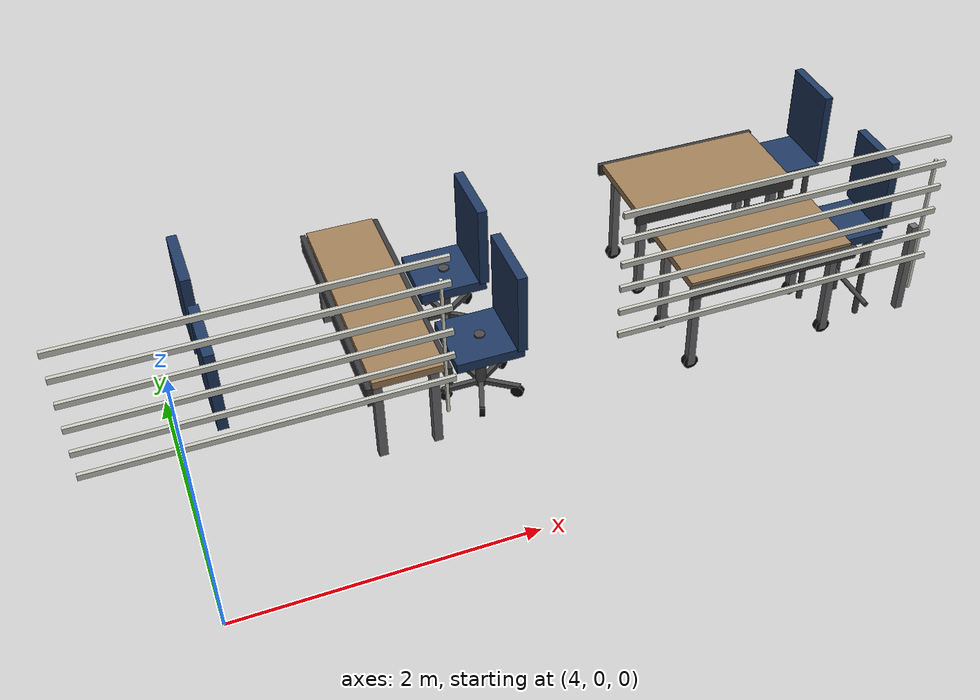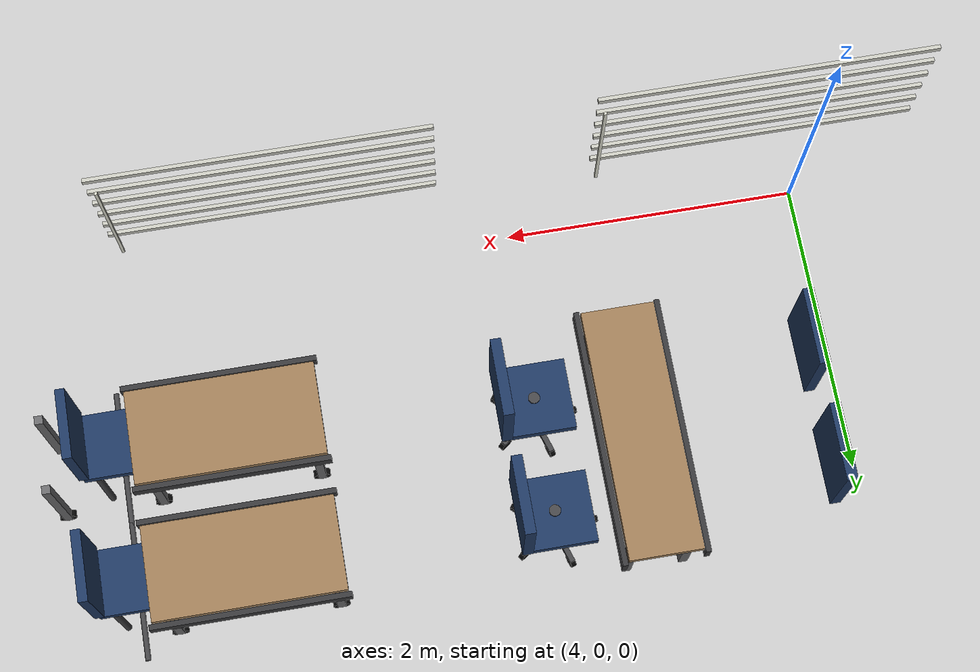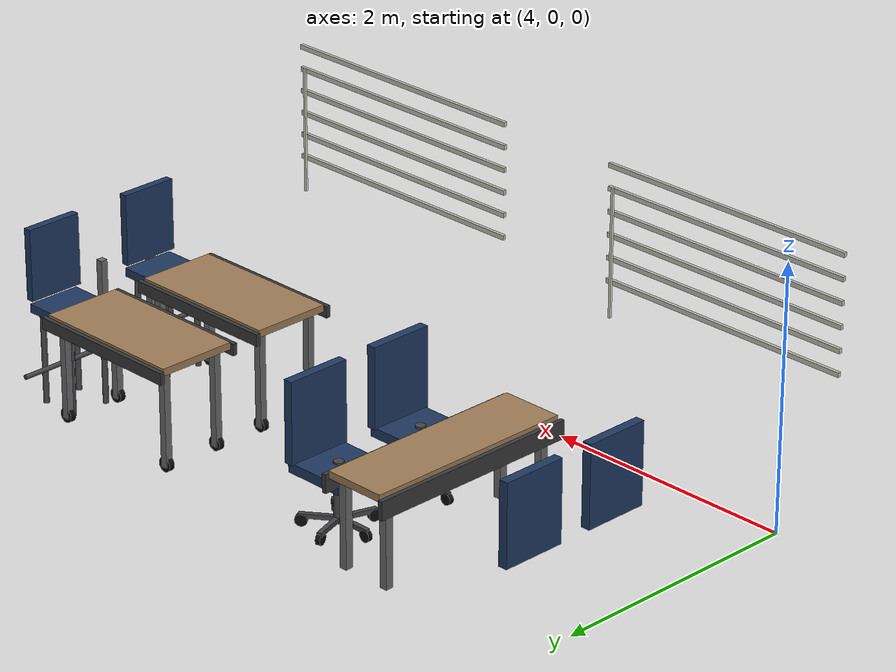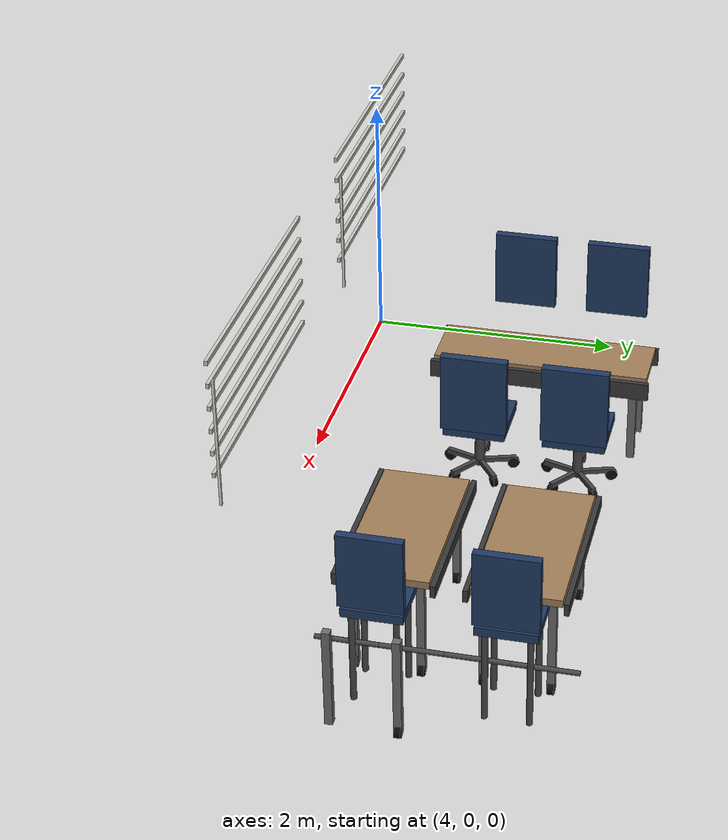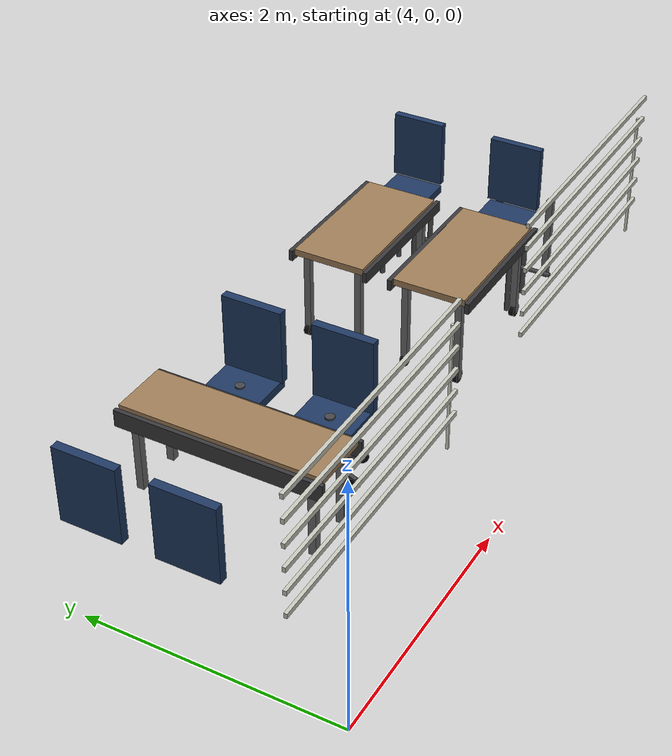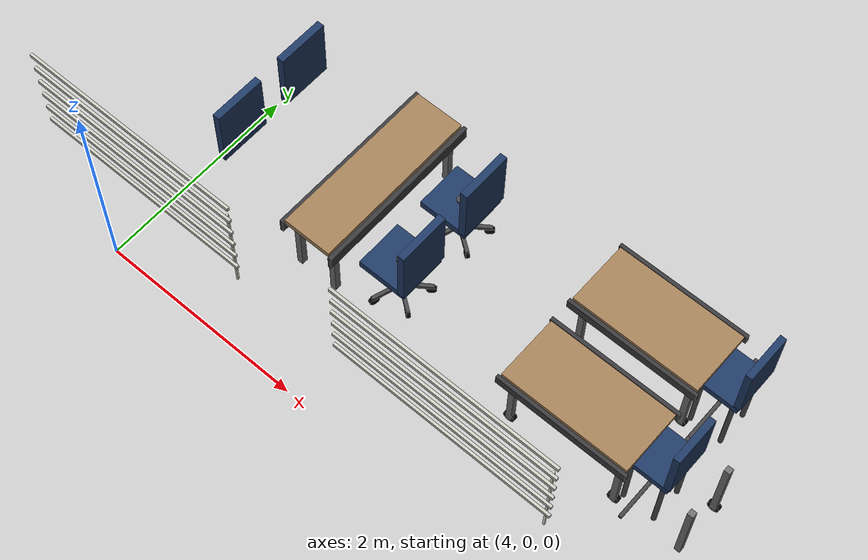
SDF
<sdf version="1.10">
 <model name="room_427_furnishings">
  <static>true</static>
  <link name="blind_2_1">
   <pose>4.49 0.085 2.25 0 0 0</pose>
   <visual name="visual">
    <geometry><box><size>2.06 0.024 0.035</size></box></geometry>
    <material>
     <ambient>0.72 0.72 0.68 1</ambient>
     <diffuse>0.78 0.78 0.74 1</diffuse>
     <specular>0.12 0.12 0.12 1</specular>
    </material>
   </visual>
  </link>
  <link name="blind_2_2">
   <pose>4.49 0.085 2.08 0 0 0</pose>
   <visual name="visual">
    <geometry><box><size>2.06 0.024 0.035</size></box></geometry>
    <material>
     <ambient>0.72 0.72 0.68 1</ambient>
     <diffuse>0.78 0.78 0.74 1</diffuse>
     <specular>0.12 0.12 0.12 1</specular>
    </material>
   </visual>
  </link>
  <link name="blind_2_3">
   <pose>4.49 0.085 1.91 0 0 0</pose>
   <visual name="visual">
    <geometry><box><size>2.06 0.024 0.035</size></box></geometry>
    <material>
     <ambient>0.72 0.72 0.68 1</ambient>
     <diffuse>0.78 0.78 0.74 1</diffuse>
     <specular>0.12 0.12 0.12 1</specular>
    </material>
   </visual>
  </link>
  <link name="blind_2_4">
   <pose>4.49 0.085 1.74 0 0 0</pose>
   <visual name="visual">
    <geometry><box><size>2.06 0.024 0.035</size></box></geometry>
    <material>
     <ambient>0.72 0.72 0.68 1</ambient>
     <diffuse>0.78 0.78 0.74 1</diffuse>
     <specular>0.12 0.12 0.12 1</specular>
    </material>
   </visual>
  </link>
  <link name="blind_2_5">
   <pose>4.49 0.085 1.57 0 0 0</pose>
   <visual name="visual">
    <geometry><box><size>2.06 0.024 0.035</size></box></geometry>
    <material>
     <ambient>0.72 0.72 0.68 1</ambient>
     <diffuse>0.78 0.78 0.74 1</diffuse>
     <specular>0.12 0.12 0.12 1</specular>
    </material>
   </visual>
  </link>
  <link name="blind_2_6">
   <pose>4.49 0.085 1.4 0 0 0</pose>
   <visual name="visual">
    <geometry><box><size>2.06 0.024 0.035</size></box></geometry>
    <material>
     <ambient>0.72 0.72 0.68 1</ambient>
     <diffuse>0.78 0.78 0.74 1</diffuse>
     <specular>0.12 0.12 0.12 1</specular>
    </material>
   </visual>
  </link>
  <link name="blind_2_pull">
   <pose>5.47 0.105 1.62 0 0 0</pose>
   <visual name="visual">
    <geometry><box><size>0.018 0.018 0.96</size></box></geometry>
    <material>
     <ambient>0.78 0.78 0.72 1</ambient>
     <diffuse>0.86 0.86 0.80 1</diffuse>
     <specular>0.45 0.45 0.40 1</specular>
    </material>
   </visual>
  </link>
  <link name="blind_3_1">
   <pose>7.53 0.085 2.25 0 0 0</pose>
   <visual name="visual">
    <geometry><box><size>2.06 0.024 0.035</size></box></geometry>
    <material>
     <ambient>0.72 0.72 0.68 1</ambient>
     <diffuse>0.78 0.78 0.74 1</diffuse>
     <specular>0.12 0.12 0.12 1</specular>
    </material>
   </visual>
  </link>
  <link name="blind_3_2">
   <pose>7.53 0.085 2.08 0 0 0</pose>
   <visual name="visual">
    <geometry><box><size>2.06 0.024 0.035</size></box></geometry>
    <material>
     <ambient>0.72 0.72 0.68 1</ambient>
     <diffuse>0.78 0.78 0.74 1</diffuse>
     <specular>0.12 0.12 0.12 1</specular>
    </material>
   </visual>
  </link>
  <link name="blind_3_3">
   <pose>7.53 0.085 1.91 0 0 0</pose>
   <visual name="visual">
    <geometry><box><size>2.06 0.024 0.035</size></box></geometry>
    <material>
     <ambient>0.72 0.72 0.68 1</ambient>
     <diffuse>0.78 0.78 0.74 1</diffuse>
     <specular>0.12 0.12 0.12 1</specular>
    </material>
   </visual>
  </link>
  <link name="blind_3_4">
   <pose>7.53 0.085 1.74 0 0 0</pose>
   <visual name="visual">
    <geometry><box><size>2.06 0.024 0.035</size></box></geometry>
    <material>
     <ambient>0.72 0.72 0.68 1</ambient>
     <diffuse>0.78 0.78 0.74 1</diffuse>
     <specular>0.12 0.12 0.12 1</specular>
    </material>
   </visual>
  </link>
  <link name="blind_3_5">
   <pose>7.53 0.085 1.57 0 0 0</pose>
   <visual name="visual">
    <geometry><box><size>2.06 0.024 0.035</size></box></geometry>
    <material>
     <ambient>0.72 0.72 0.68 1</ambient>
     <diffuse>0.78 0.78 0.74 1</diffuse>
     <specular>0.12 0.12 0.12 1</specular>
    </material>
   </visual>
  </link>
  <link name="blind_3_6">
   <pose>7.53 0.085 1.4 0 0 0</pose>
   <visual name="visual">
    <geometry><box><size>2.06 0.024 0.035</size></box></geometry>
    <material>
     <ambient>0.72 0.72 0.68 1</ambient>
     <diffuse>0.78 0.78 0.74 1</diffuse>
     <specular>0.12 0.12 0.12 1</specular>
    </material>
   </visual>
  </link>
  <link name="blind_3_pull">
   <pose>8.51 0.105 1.62 0 0 0</pose>
   <visual name="visual">
    <geometry><box><size>0.018 0.018 0.96</size></box></geometry>
    <material>
     <ambient>0.78 0.78 0.72 1</ambient>
     <diffuse>0.86 0.86 0.80 1</diffuse>
     <specular>0.45 0.45 0.40 1</specular>
    </material>
   </visual>
  </link>
  <link name="plastic_wheel_chair_1_1_back">
   <pose>4.29 1.32 0.82 0 0 3.1416</pose>
   <collision name="collision"><geometry><box><size>0.07 0.5 0.62</size></box></geometry></collision>
   <visual name="visual">
    <geometry><box><size>0.07 0.5 0.62</size></box></geometry>
    <material>
     <ambient>0.10 0.17 0.28 1</ambient>
     <diffuse>0.12 0.22 0.38 1</diffuse>
     <specular>0.18 0.2 0.24 1</specular>
    </material>
   </visual>
  </link>
  <link name="plastic_wheel_chair_1_2_back">
   <pose>4.29 2.08 0.82 0 0 3.1416</pose>
   <collision name="collision"><geometry><box><size>0.07 0.5 0.62</size></box></geometry></collision>
   <visual name="visual">
    <geometry><box><size>0.07 0.5 0.62</size></box></geometry>
    <material>
     <ambient>0.10 0.17 0.28 1</ambient>
     <diffuse>0.12 0.22 0.38 1</diffuse>
     <specular>0.18 0.2 0.24 1</specular>
    </material>
   </visual>
  </link>
  <link name="fixed_student_bench_rear_right_top">
   <pose>5.45 1.7 0.73 0 0 1.5708</pose>
   <collision name="collision"><geometry><box><size>1.65 0.48 0.055</size></box></geometry></collision>
   <visual name="visual">
    <geometry><box><size>1.65 0.48 0.055</size></box></geometry>
    <material>
     <ambient>0.58 0.46 0.32 1</ambient>
     <diffuse>0.62 0.49 0.34 1</diffuse>
     <specular>0.22 0.18 0.12 1</specular>
    </material>
   </visual>
  </link>
  <link name="fixed_student_bench_rear_right_front_apron">
   <pose>5.185 1.7 0.66 0 0 1.5708</pose>
   <collision name="collision"><geometry><box><size>1.69 0.035 0.14</size></box></geometry></collision>
   <visual name="visual">
    <geometry><box><size>1.69 0.035 0.14</size></box></geometry>
    <material>
     <ambient>0.18 0.18 0.19 1</ambient>
     <diffuse>0.22 0.22 0.23 1</diffuse>
     <specular>0.35 0.35 0.35 1</specular>
    </material>
   </visual>
  </link>
  <link name="fixed_student_bench_rear_right_back_apron">
   <pose>5.715 1.7 0.66 0 0 1.5708</pose>
   <collision name="collision"><geometry><box><size>1.69 0.035 0.14</size></box></geometry></collision>
   <visual name="visual">
    <geometry><box><size>1.69 0.035 0.14</size></box></geometry>
    <material>
     <ambient>0.18 0.18 0.19 1</ambient>
     <diffuse>0.22 0.22 0.23 1</diffuse>
     <specular>0.35 0.35 0.35 1</specular>
    </material>
   </visual>
  </link>
  <link name="fixed_student_bench_rear_right_leg_1">
   <pose>5.26 2.42 0.36 0 0 1.5708</pose>
   <collision name="collision"><geometry><box><size>0.06 0.06 0.68</size></box></geometry></collision>
   <visual name="visual">
    <geometry><box><size>0.06 0.06 0.68</size></box></geometry>
    <material>
     <ambient>0.36 0.36 0.37 1</ambient>
     <diffuse>0.42 0.42 0.43 1</diffuse>
     <specular>0.45 0.45 0.45 1</specular>
    </material>
   </visual>
  </link>
  <link name="fixed_student_bench_rear_right_leg_2">
   <pose>5.64 2.42 0.36 0 0 1.5708</pose>
   <collision name="collision"><geometry><box><size>0.06 0.06 0.68</size></box></geometry></collision>
   <visual name="visual">
    <geometry><box><size>0.06 0.06 0.68</size></box></geometry>
    <material>
     <ambient>0.36 0.36 0.37 1</ambient>
     <diffuse>0.42 0.42 0.43 1</diffuse>
     <specular>0.45 0.45 0.45 1</specular>
    </material>
   </visual>
  </link>
  <link name="fixed_student_bench_rear_right_leg_3">
   <pose>5.26 0.98 0.36 0 0 1.5708</pose>
   <collision name="collision"><geometry><box><size>0.06 0.06 0.68</size></box></geometry></collision>
   <visual name="visual">
    <geometry><box><size>0.06 0.06 0.68</size></box></geometry>
    <material>
     <ambient>0.36 0.36 0.37 1</ambient>
     <diffuse>0.42 0.42 0.43 1</diffuse>
     <specular>0.45 0.45 0.45 1</specular>
    </material>
   </visual>
  </link>
  <link name="fixed_student_bench_rear_right_leg_4">
   <pose>5.64 0.98 0.36 0 0 1.5708</pose>
   <collision name="collision"><geometry><box><size>0.06 0.06 0.68</size></box></geometry></collision>
   <visual name="visual">
    <geometry><box><size>0.06 0.06 0.68</size></box></geometry>
    <material>
     <ambient>0.36 0.36 0.37 1</ambient>
     <diffuse>0.42 0.42 0.43 1</diffuse>
     <specular>0.45 0.45 0.45 1</specular>
    </material>
   </visual>
  </link>
  <link name="plastic_wheel_chair_3_1_seat">
   <pose>6.07 1.32 0.48 0 0 3.1416</pose>
   <collision name="collision"><geometry><box><size>0.48 0.47 0.075</size></box></geometry></collision>
   <visual name="visual">
    <geometry><box><size>0.48 0.47 0.075</size></box></geometry>
    <material>
     <ambient>0.10 0.17 0.28 1</ambient>
     <diffuse>0.12 0.22 0.38 1</diffuse>
     <specular>0.18 0.2 0.24 1</specular>
    </material>
   </visual>
  </link>
  <link name="plastic_wheel_chair_3_1_back">
   <pose>6.29 1.32 0.82 0 0 3.1416</pose>
   <collision name="collision"><geometry><box><size>0.07 0.5 0.62</size></box></geometry></collision>
   <visual name="visual">
    <geometry><box><size>0.07 0.5 0.62</size></box></geometry>
    <material>
     <ambient>0.10 0.17 0.28 1</ambient>
     <diffuse>0.12 0.22 0.38 1</diffuse>
     <specular>0.18 0.2 0.24 1</specular>
    </material>
   </visual>
  </link>
  <link name="plastic_wheel_chair_3_1_gas_lift">
   <pose>6.07 1.32 0.3 0 0 3.1416</pose>
   <collision name="collision">
    <geometry><cylinder><radius>0.038</radius><length>0.46</length></cylinder></geometry>
   </collision>
   <visual name="visual">
    <geometry><cylinder><radius>0.038</radius><length>0.46</length></cylinder></geometry>
    <material>
     <ambient>0.20 0.20 0.21 1</ambient>
     <diffuse>0.27 0.27 0.28 1</diffuse>
     <specular>0.35 0.35 0.35 1</specular>
    </material>
   </visual>
  </link>
  <link name="plastic_wheel_chair_3_1_star_arm_1">
   <pose>5.94 1.32 0.1 0 0 3.1416</pose>
   <collision name="collision"><geometry><box><size>0.3 0.035 0.035</size></box></geometry></collision>
   <visual name="visual">
    <geometry><box><size>0.3 0.035 0.035</size></box></geometry>
    <material>
     <ambient>0.20 0.20 0.21 1</ambient>
     <diffuse>0.27 0.27 0.28 1</diffuse>
     <specular>0.35 0.35 0.35 1</specular>
    </material>
   </visual>
  </link>
  <link name="plastic_wheel_chair_3_1_caster_1">
   <pose>5.81 1.32 0.065 1.5708 0 3.1416</pose>
   <collision name="collision">
    <geometry><cylinder><radius>0.045</radius><length>0.035</length></cylinder></geometry>
   </collision>
   <visual name="visual">
    <geometry><cylinder><radius>0.045</radius><length>0.035</length></cylinder></geometry>
    <material>
     <ambient>0.035 0.035 0.035 1</ambient>
     <diffuse>0.045 0.045 0.045 1</diffuse>
     <specular>0.08 0.08 0.08 1</specular>
    </material>
   </visual>
  </link>
  <link name="plastic_wheel_chair_3_1_star_arm_2">
   <pose>6.0298 1.1964 0.1 0 0 4.3982</pose>
   <collision name="collision"><geometry><box><size>0.3 0.035 0.035</size></box></geometry></collision>
   <visual name="visual">
    <geometry><box><size>0.3 0.035 0.035</size></box></geometry>
    <material>
     <ambient>0.20 0.20 0.21 1</ambient>
     <diffuse>0.27 0.27 0.28 1</diffuse>
     <specular>0.35 0.35 0.35 1</specular>
    </material>
   </visual>
  </link>
  <link name="plastic_wheel_chair_3_1_caster_2">
   <pose>5.9896 1.0727 0.065 1.5708 0 4.3982</pose>
   <collision name="collision">
    <geometry><cylinder><radius>0.045</radius><length>0.035</length></cylinder></geometry>
   </collision>
   <visual name="visual">
    <geometry><cylinder><radius>0.045</radius><length>0.035</length></cylinder></geometry>
    <material>
     <ambient>0.035 0.035 0.035 1</ambient>
     <diffuse>0.045 0.045 0.045 1</diffuse>
     <specular>0.08 0.08 0.08 1</specular>
    </material>
   </visual>
  </link>
  <link name="plastic_wheel_chair_3_1_star_arm_3">
   <pose>6.1752 1.2436 0.1 0 0 5.6549</pose>
   <collision name="collision"><geometry><box><size>0.3 0.035 0.035</size></box></geometry></collision>
   <visual name="visual">
    <geometry><box><size>0.3 0.035 0.035</size></box></geometry>
    <material>
     <ambient>0.20 0.20 0.21 1</ambient>
     <diffuse>0.27 0.27 0.28 1</diffuse>
     <specular>0.35 0.35 0.35 1</specular>
    </material>
   </visual>
  </link>
  <link name="plastic_wheel_chair_3_1_caster_3">
   <pose>6.2803 1.1672 0.065 1.5708 0 5.6549</pose>
   <collision name="collision">
    <geometry><cylinder><radius>0.045</radius><length>0.035</length></cylinder></geometry>
   </collision>
   <visual name="visual">
    <geometry><cylinder><radius>0.045</radius><length>0.035</length></cylinder></geometry>
    <material>
     <ambient>0.035 0.035 0.035 1</ambient>
     <diffuse>0.045 0.045 0.045 1</diffuse>
     <specular>0.08 0.08 0.08 1</specular>
    </material>
   </visual>
  </link>
  <link name="plastic_wheel_chair_3_1_star_arm_4">
   <pose>6.1752 1.3964 0.1 0 0 6.9115</pose>
   <collision name="collision"><geometry><box><size>0.3 0.035 0.035</size></box></geometry></collision>
   <visual name="visual">
    <geometry><box><size>0.3 0.035 0.035</size></box></geometry>
    <material>
     <ambient>0.20 0.20 0.21 1</ambient>
     <diffuse>0.27 0.27 0.28 1</diffuse>
     <specular>0.35 0.35 0.35 1</specular>
    </material>
   </visual>
  </link>
  <link name="plastic_wheel_chair_3_1_caster_4">
   <pose>6.2803 1.4728 0.065 1.5708 0 6.9115</pose>
   <collision name="collision">
    <geometry><cylinder><radius>0.045</radius><length>0.035</length></cylinder></geometry>
   </collision>
   <visual name="visual">
    <geometry><cylinder><radius>0.045</radius><length>0.035</length></cylinder></geometry>
    <material>
     <ambient>0.035 0.035 0.035 1</ambient>
     <diffuse>0.045 0.045 0.045 1</diffuse>
     <specular>0.08 0.08 0.08 1</specular>
    </material>
   </visual>
  </link>
  <link name="plastic_wheel_chair_3_1_star_arm_5">
   <pose>6.0298 1.4436 0.1 0 0 8.1681</pose>
   <collision name="collision"><geometry><box><size>0.3 0.035 0.035</size></box></geometry></collision>
   <visual name="visual">
    <geometry><box><size>0.3 0.035 0.035</size></box></geometry>
    <material>
     <ambient>0.20 0.20 0.21 1</ambient>
     <diffuse>0.27 0.27 0.28 1</diffuse>
     <specular>0.35 0.35 0.35 1</specular>
    </material>
   </visual>
  </link>
  <link name="plastic_wheel_chair_3_1_caster_5">
   <pose>5.9897 1.5673 0.065 1.5708 0 8.1681</pose>
   <collision name="collision">
    <geometry><cylinder><radius>0.045</radius><length>0.035</length></cylinder></geometry>
   </collision>
   <visual name="visual">
    <geometry><cylinder><radius>0.045</radius><length>0.035</length></cylinder></geometry>
    <material>
     <ambient>0.035 0.035 0.035 1</ambient>
     <diffuse>0.045 0.045 0.045 1</diffuse>
     <specular>0.08 0.08 0.08 1</specular>
    </material>
   </visual>
  </link>
  <link name="plastic_wheel_chair_3_2_seat">
   <pose>6.07 2.08 0.48 0 0 3.1416</pose>
   <collision name="collision"><geometry><box><size>0.48 0.47 0.075</size></box></geometry></collision>
   <visual name="visual">
    <geometry><box><size>0.48 0.47 0.075</size></box></geometry>
    <material>
     <ambient>0.10 0.17 0.28 1</ambient>
     <diffuse>0.12 0.22 0.38 1</diffuse>
     <specular>0.18 0.2 0.24 1</specular>
    </material>
   </visual>
  </link>
  <link name="plastic_wheel_chair_3_2_back">
   <pose>6.29 2.08 0.82 0 0 3.1416</pose>
   <collision name="collision"><geometry><box><size>0.07 0.5 0.62</size></box></geometry></collision>
   <visual name="visual">
    <geometry><box><size>0.07 0.5 0.62</size></box></geometry>
    <material>
     <ambient>0.10 0.17 0.28 1</ambient>
     <diffuse>0.12 0.22 0.38 1</diffuse>
     <specular>0.18 0.2 0.24 1</specular>
    </material>
   </visual>
  </link>
  <link name="plastic_wheel_chair_3_2_gas_lift">
   <pose>6.07 2.08 0.3 0 0 3.1416</pose>
   <collision name="collision">
    <geometry><cylinder><radius>0.038</radius><length>0.46</length></cylinder></geometry>
   </collision>
   <visual name="visual">
    <geometry><cylinder><radius>0.038</radius><length>0.46</length></cylinder></geometry>
    <material>
     <ambient>0.20 0.20 0.21 1</ambient>
     <diffuse>0.27 0.27 0.28 1</diffuse>
     <specular>0.35 0.35 0.35 1</specular>
    </material>
   </visual>
  </link>
  <link name="plastic_wheel_chair_3_2_star_arm_1">
   <pose>5.94 2.08 0.1 0 0 3.1416</pose>
   <collision name="collision"><geometry><box><size>0.3 0.035 0.035</size></box></geometry></collision>
   <visual name="visual">
    <geometry><box><size>0.3 0.035 0.035</size></box></geometry>
    <material>
     <ambient>0.20 0.20 0.21 1</ambient>
     <diffuse>0.27 0.27 0.28 1</diffuse>
     <specular>0.35 0.35 0.35 1</specular>
    </material>
   </visual>
  </link>
  <link name="plastic_wheel_chair_3_2_caster_1">
   <pose>5.81 2.08 0.065 1.5708 0 3.1416</pose>
   <collision name="collision">
    <geometry><cylinder><radius>0.045</radius><length>0.035</length></cylinder></geometry>
   </collision>
   <visual name="visual">
    <geometry><cylinder><radius>0.045</radius><length>0.035</length></cylinder></geometry>
    <material>
     <ambient>0.035 0.035 0.035 1</ambient>
     <diffuse>0.045 0.045 0.045 1</diffuse>
     <specular>0.08 0.08 0.08 1</specular>
    </material>
   </visual>
  </link>
  <link name="plastic_wheel_chair_3_2_star_arm_2">
   <pose>6.0298 1.9564 0.1 0 0 4.3982</pose>
   <collision name="collision"><geometry><box><size>0.3 0.035 0.035</size></box></geometry></collision>
   <visual name="visual">
    <geometry><box><size>0.3 0.035 0.035</size></box></geometry>
    <material>
     <ambient>0.20 0.20 0.21 1</ambient>
     <diffuse>0.27 0.27 0.28 1</diffuse>
     <specular>0.35 0.35 0.35 1</specular>
    </material>
   </visual>
  </link>
  <link name="plastic_wheel_chair_3_2_caster_2">
   <pose>5.9896 1.8327 0.065 1.5708 0 4.3982</pose>
   <collision name="collision">
    <geometry><cylinder><radius>0.045</radius><length>0.035</length></cylinder></geometry>
   </collision>
   <visual name="visual">
    <geometry><cylinder><radius>0.045</radius><length>0.035</length></cylinder></geometry>
    <material>
     <ambient>0.035 0.035 0.035 1</ambient>
     <diffuse>0.045 0.045 0.045 1</diffuse>
     <specular>0.08 0.08 0.08 1</specular>
    </material>
   </visual>
  </link>
  <link name="plastic_wheel_chair_3_2_star_arm_3">
   <pose>6.1752 2.0036 0.1 0 0 5.6549</pose>
   <collision name="collision"><geometry><box><size>0.3 0.035 0.035</size></box></geometry></collision>
   <visual name="visual">
    <geometry><box><size>0.3 0.035 0.035</size></box></geometry>
    <material>
     <ambient>0.20 0.20 0.21 1</ambient>
     <diffuse>0.27 0.27 0.28 1</diffuse>
     <specular>0.35 0.35 0.35 1</specular>
    </material>
   </visual>
  </link>
  <link name="plastic_wheel_chair_3_2_caster_3">
   <pose>6.2803 1.9272 0.065 1.5708 0 5.6549</pose>
   <collision name="collision">
    <geometry><cylinder><radius>0.045</radius><length>0.035</length></cylinder></geometry>
   </collision>
   <visual name="visual">
    <geometry><cylinder><radius>0.045</radius><length>0.035</length></cylinder></geometry>
    <material>
     <ambient>0.035 0.035 0.035 1</ambient>
     <diffuse>0.045 0.045 0.045 1</diffuse>
     <specular>0.08 0.08 0.08 1</specular>
    </material>
   </visual>
  </link>
  <link name="plastic_wheel_chair_3_2_star_arm_4">
   <pose>6.1752 2.1564 0.1 0 0 6.9115</pose>
   <collision name="collision"><geometry><box><size>0.3 0.035 0.035</size></box></geometry></collision>
   <visual name="visual">
    <geometry><box><size>0.3 0.035 0.035</size></box></geometry>
    <material>
     <ambient>0.20 0.20 0.21 1</ambient>
     <diffuse>0.27 0.27 0.28 1</diffuse>
     <specular>0.35 0.35 0.35 1</specular>
    </material>
   </visual>
  </link>
  <link name="plastic_wheel_chair_3_2_caster_4">
   <pose>6.2803 2.2328 0.065 1.5708 0 6.9115</pose>
   <collision name="collision">
    <geometry><cylinder><radius>0.045</radius><length>0.035</length></cylinder></geometry>
   </collision>
   <visual name="visual">
    <geometry><cylinder><radius>0.045</radius><length>0.035</length></cylinder></geometry>
    <material>
     <ambient>0.035 0.035 0.035 1</ambient>
     <diffuse>0.045 0.045 0.045 1</diffuse>
     <specular>0.08 0.08 0.08 1</specular>
    </material>
   </visual>
  </link>
  <link name="plastic_wheel_chair_3_2_star_arm_5">
   <pose>6.0298 2.2036 0.1 0 0 8.1681</pose>
   <collision name="collision"><geometry><box><size>0.3 0.035 0.035</size></box></geometry></collision>
   <visual name="visual">
    <geometry><box><size>0.3 0.035 0.035</size></box></geometry>
    <material>
     <ambient>0.20 0.20 0.21 1</ambient>
     <diffuse>0.27 0.27 0.28 1</diffuse>
     <specular>0.35 0.35 0.35 1</specular>
    </material>
   </visual>
  </link>
  <link name="plastic_wheel_chair_3_2_caster_5">
   <pose>5.9897 2.3273 0.065 1.5708 0 8.1681</pose>
   <collision name="collision">
    <geometry><cylinder><radius>0.045</radius><length>0.035</length></cylinder></geometry>
   </collision>
   <visual name="visual">
    <geometry><cylinder><radius>0.045</radius><length>0.035</length></cylinder></geometry>
    <material>
     <ambient>0.035 0.035 0.035 1</ambient>
     <diffuse>0.045 0.045 0.045 1</diffuse>
     <specular>0.08 0.08 0.08 1</specular>
    </material>
   </visual>
  </link>
  <link name="tall_mobile_table_1_top">
   <pose>8.05 1.24 0.82 0 0 0</pose>
   <collision name="collision"><geometry><box><size>1.22 0.61 0.055</size></box></geometry></collision>
   <visual name="visual">
    <geometry><box><size>1.22 0.61 0.055</size></box></geometry>
    <material>
     <ambient>0.58 0.46 0.32 1</ambient>
     <diffuse>0.62 0.49 0.34 1</diffuse>
     <specular>0.22 0.18 0.12 1</specular>
    </material>
   </visual>
  </link>
  <link name="tall_mobile_table_1_front_edge">
   <pose>8.05 1.572 0.79 0 0 0</pose>
   <collision name="collision"><geometry><box><size>1.26 0.035 0.09</size></box></geometry></collision>
   <visual name="visual">
    <geometry><box><size>1.26 0.035 0.09</size></box></geometry>
    <material>
     <ambient>0.18 0.18 0.19 1</ambient>
     <diffuse>0.22 0.22 0.23 1</diffuse>
     <specular>0.35 0.35 0.35 1</specular>
    </material>
   </visual>
  </link>
  <link name="tall_mobile_table_1_back_edge">
   <pose>8.05 0.908 0.79 0 0 0</pose>
   <collision name="collision"><geometry><box><size>1.26 0.035 0.09</size></box></geometry></collision>
   <visual name="visual">
    <geometry><box><size>1.26 0.035 0.09</size></box></geometry>
    <material>
     <ambient>0.18 0.18 0.19 1</ambient>
     <diffuse>0.22 0.22 0.23 1</diffuse>
     <specular>0.35 0.35 0.35 1</specular>
    </material>
   </visual>
  </link>
  <link name="tall_mobile_table_1_leg_1">
   <pose>8.58 1.47 0.42 0 0 0</pose>
   <collision name="collision"><geometry><box><size>0.055 0.055 0.74</size></box></geometry></collision>
   <visual name="visual">
    <geometry><box><size>0.055 0.055 0.74</size></box></geometry>
    <material>
     <ambient>0.36 0.36 0.37 1</ambient>
     <diffuse>0.42 0.42 0.43 1</diffuse>
     <specular>0.45 0.45 0.45 1</specular>
    </material>
   </visual>
  </link>
  <link name="tall_mobile_table_1_caster_1">
   <pose>8.58 1.47 0.07 1.5708 0 0</pose>
   <collision name="collision">
    <geometry><cylinder><radius>0.055</radius><length>0.045</length></cylinder></geometry>
   </collision>
   <visual name="visual">
    <geometry><cylinder><radius>0.055</radius><length>0.045</length></cylinder></geometry>
    <material>
     <ambient>0.035 0.035 0.035 1</ambient>
     <diffuse>0.045 0.045 0.045 1</diffuse>
     <specular>0.08 0.08 0.08 1</specular>
    </material>
   </visual>
  </link>
  <link name="tall_mobile_table_1_leg_2">
   <pose>8.58 1.01 0.42 0 0 0</pose>
   <collision name="collision"><geometry><box><size>0.055 0.055 0.74</size></box></geometry></collision>
   <visual name="visual">
    <geometry><box><size>0.055 0.055 0.74</size></box></geometry>
    <material>
     <ambient>0.36 0.36 0.37 1</ambient>
     <diffuse>0.42 0.42 0.43 1</diffuse>
     <specular>0.45 0.45 0.45 1</specular>
    </material>
   </visual>
  </link>
  <link name="tall_mobile_table_1_caster_2">
   <pose>8.58 1.01 0.07 1.5708 0 0</pose>
   <collision name="collision">
    <geometry><cylinder><radius>0.055</radius><length>0.045</length></cylinder></geometry>
   </collision>
   <visual name="visual">
    <geometry><cylinder><radius>0.055</radius><length>0.045</length></cylinder></geometry>
    <material>
     <ambient>0.035 0.035 0.035 1</ambient>
     <diffuse>0.045 0.045 0.045 1</diffuse>
     <specular>0.08 0.08 0.08 1</specular>
    </material>
   </visual>
  </link>
  <link name="tall_mobile_table_1_leg_3">
   <pose>7.52 1.47 0.42 0 0 0</pose>
   <collision name="collision"><geometry><box><size>0.055 0.055 0.74</size></box></geometry></collision>
   <visual name="visual">
    <geometry><box><size>0.055 0.055 0.74</size></box></geometry>
    <material>
     <ambient>0.36 0.36 0.37 1</ambient>
     <diffuse>0.42 0.42 0.43 1</diffuse>
     <specular>0.45 0.45 0.45 1</specular>
    </material>
   </visual>
  </link>
  <link name="tall_mobile_table_1_caster_3">
   <pose>7.52 1.47 0.07 1.5708 0 0</pose>
   <collision name="collision">
    <geometry><cylinder><radius>0.055</radius><length>0.045</length></cylinder></geometry>
   </collision>
   <visual name="visual">
    <geometry><cylinder><radius>0.055</radius><length>0.045</length></cylinder></geometry>
    <material>
     <ambient>0.035 0.035 0.035 1</ambient>
     <diffuse>0.045 0.045 0.045 1</diffuse>
     <specular>0.08 0.08 0.08 1</specular>
    </material>
   </visual>
  </link>
  <link name="tall_mobile_table_1_leg_4">
   <pose>7.52 1.01 0.42 0 0 0</pose>
   <collision name="collision"><geometry><box><size>0.055 0.055 0.74</size></box></geometry></collision>
   <visual name="visual">
    <geometry><box><size>0.055 0.055 0.74</size></box></geometry>
    <material>
     <ambient>0.36 0.36 0.37 1</ambient>
     <diffuse>0.42 0.42 0.43 1</diffuse>
     <specular>0.45 0.45 0.45 1</specular>
    </material>
   </visual>
  </link>
  <link name="tall_mobile_table_1_caster_4">
   <pose>7.52 1.01 0.07 1.5708 0 0</pose>
   <collision name="collision">
    <geometry><cylinder><radius>0.055</radius><length>0.045</length></cylinder></geometry>
   </collision>
   <visual name="visual">
    <geometry><cylinder><radius>0.055</radius><length>0.045</length></cylinder></geometry>
    <material>
     <ambient>0.035 0.035 0.035 1</ambient>
     <diffuse>0.045 0.045 0.045 1</diffuse>
     <specular>0.08 0.08 0.08 1</specular>
    </material>
   </visual>
  </link>
  <link name="high_chair_1_seat">
   <pose>8.77 1.24 0.76 0 0 3.1416</pose>
   <collision name="collision"><geometry><box><size>0.42 0.42 0.065</size></box></geometry></collision>
   <visual name="visual">
    <geometry><box><size>0.42 0.42 0.065</size></box></geometry>
    <material>
     <ambient>0.10 0.17 0.28 1</ambient>
     <diffuse>0.12 0.22 0.38 1</diffuse>
     <specular>0.18 0.2 0.24 1</specular>
    </material>
   </visual>
  </link>
  <link name="high_chair_1_back">
   <pose>8.97 1.24 1.1 0 0 3.1416</pose>
   <collision name="collision"><geometry><box><size>0.06 0.44 0.55</size></box></geometry></collision>
   <visual name="visual">
    <geometry><box><size>0.06 0.44 0.55</size></box></geometry>
    <material>
     <ambient>0.10 0.17 0.28 1</ambient>
     <diffuse>0.12 0.22 0.38 1</diffuse>
     <specular>0.18 0.2 0.24 1</specular>
    </material>
   </visual>
  </link>
  <link name="high_chair_1_leg_1">
   <pose>8.62 1.09 0.39 0 0 3.1416</pose>
   <collision name="collision">
    <geometry><cylinder><radius>0.022</radius><length>0.74</length></cylinder></geometry>
   </collision>
   <visual name="visual">
    <geometry><cylinder><radius>0.022</radius><length>0.74</length></cylinder></geometry>
    <material>
     <ambient>0.20 0.20 0.21 1</ambient>
     <diffuse>0.27 0.27 0.28 1</diffuse>
     <specular>0.35 0.35 0.35 1</specular>
    </material>
   </visual>
  </link>
  <link name="high_chair_1_leg_2">
   <pose>8.62 1.39 0.39 0 0 3.1416</pose>
   <collision name="collision">
    <geometry><cylinder><radius>0.022</radius><length>0.74</length></cylinder></geometry>
   </collision>
   <visual name="visual">
    <geometry><cylinder><radius>0.022</radius><length>0.74</length></cylinder></geometry>
    <material>
     <ambient>0.20 0.20 0.21 1</ambient>
     <diffuse>0.27 0.27 0.28 1</diffuse>
     <specular>0.35 0.35 0.35 1</specular>
    </material>
   </visual>
  </link>
  <link name="high_chair_1_leg_3">
   <pose>8.92 1.09 0.39 0 0 3.1416</pose>
   <collision name="collision">
    <geometry><cylinder><radius>0.022</radius><length>0.74</length></cylinder></geometry>
   </collision>
   <visual name="visual">
    <geometry><cylinder><radius>0.022</radius><length>0.74</length></cylinder></geometry>
    <material>
     <ambient>0.20 0.20 0.21 1</ambient>
     <diffuse>0.27 0.27 0.28 1</diffuse>
     <specular>0.35 0.35 0.35 1</specular>
    </material>
   </visual>
  </link>
  <link name="high_chair_1_leg_4">
   <pose>8.92 1.39 0.39 0 0 3.1416</pose>
   <collision name="collision">
    <geometry><cylinder><radius>0.022</radius><length>0.74</length></cylinder></geometry>
   </collision>
   <visual name="visual">
    <geometry><cylinder><radius>0.022</radius><length>0.74</length></cylinder></geometry>
    <material>
     <ambient>0.20 0.20 0.21 1</ambient>
     <diffuse>0.27 0.27 0.28 1</diffuse>
     <specular>0.35 0.35 0.35 1</specular>
    </material>
   </visual>
  </link>
  <link name="high_chair_1_foot_ring_front">
   <pose>8.77 1.02 0.37 1.5708 0 3.1416</pose>
   <visual name="visual">
    <geometry><cylinder><radius>0.018</radius><length>0.46</length></cylinder></geometry>
    <material>
     <ambient>0.20 0.20 0.21 1</ambient>
     <diffuse>0.27 0.27 0.28 1</diffuse>
     <specular>0.35 0.35 0.35 1</specular>
    </material>
   </visual>
  </link>
  <link name="high_chair_1_foot_ring_back">
   <pose>8.77 1.46 0.37 1.5708 0 3.1416</pose>
   <visual name="visual">
    <geometry><cylinder><radius>0.018</radius><length>0.46</length></cylinder></geometry>
    <material>
     <ambient>0.20 0.20 0.21 1</ambient>
     <diffuse>0.27 0.27 0.28 1</diffuse>
     <specular>0.35 0.35 0.35 1</specular>
    </material>
   </visual>
  </link>
  <link name="tall_mobile_table_2_top">
   <pose>8.05 2.12 0.82 0 0 0</pose>
   <collision name="collision"><geometry><box><size>1.22 0.61 0.055</size></box></geometry></collision>
   <visual name="visual">
    <geometry><box><size>1.22 0.61 0.055</size></box></geometry>
    <material>
     <ambient>0.58 0.46 0.32 1</ambient>
     <diffuse>0.62 0.49 0.34 1</diffuse>
     <specular>0.22 0.18 0.12 1</specular>
    </material>
   </visual>
  </link>
  <link name="tall_mobile_table_2_front_edge">
   <pose>8.05 2.452 0.79 0 0 0</pose>
   <collision name="collision"><geometry><box><size>1.26 0.035 0.09</size></box></geometry></collision>
   <visual name="visual">
    <geometry><box><size>1.26 0.035 0.09</size></box></geometry>
    <material>
     <ambient>0.18 0.18 0.19 1</ambient>
     <diffuse>0.22 0.22 0.23 1</diffuse>
     <specular>0.35 0.35 0.35 1</specular>
    </material>
   </visual>
  </link>
  <link name="tall_mobile_table_2_back_edge">
   <pose>8.05 1.788 0.79 0 0 0</pose>
   <collision name="collision"><geometry><box><size>1.26 0.035 0.09</size></box></geometry></collision>
   <visual name="visual">
    <geometry><box><size>1.26 0.035 0.09</size></box></geometry>
    <material>
     <ambient>0.18 0.18 0.19 1</ambient>
     <diffuse>0.22 0.22 0.23 1</diffuse>
     <specular>0.35 0.35 0.35 1</specular>
    </material>
   </visual>
  </link>
  <link name="tall_mobile_table_2_leg_1">
   <pose>8.58 2.35 0.42 0 0 0</pose>
   <collision name="collision"><geometry><box><size>0.055 0.055 0.74</size></box></geometry></collision>
   <visual name="visual">
    <geometry><box><size>0.055 0.055 0.74</size></box></geometry>
    <material>
     <ambient>0.36 0.36 0.37 1</ambient>
     <diffuse>0.42 0.42 0.43 1</diffuse>
     <specular>0.45 0.45 0.45 1</specular>
    </material>
   </visual>
  </link>
  <link name="tall_mobile_table_2_caster_1">
   <pose>8.58 2.35 0.07 1.5708 0 0</pose>
   <collision name="collision">
    <geometry><cylinder><radius>0.055</radius><length>0.045</length></cylinder></geometry>
   </collision>
   <visual name="visual">
    <geometry><cylinder><radius>0.055</radius><length>0.045</length></cylinder></geometry>
    <material>
     <ambient>0.035 0.035 0.035 1</ambient>
     <diffuse>0.045 0.045 0.045 1</diffuse>
     <specular>0.08 0.08 0.08 1</specular>
    </material>
   </visual>
  </link>
  <link name="tall_mobile_table_2_leg_2">
   <pose>8.58 1.89 0.42 0 0 0</pose>
   <collision name="collision"><geometry><box><size>0.055 0.055 0.74</size></box></geometry></collision>
   <visual name="visual">
    <geometry><box><size>0.055 0.055 0.74</size></box></geometry>
    <material>
     <ambient>0.36 0.36 0.37 1</ambient>
     <diffuse>0.42 0.42 0.43 1</diffuse>
     <specular>0.45 0.45 0.45 1</specular>
    </material>
   </visual>
  </link>
  <link name="tall_mobile_table_2_caster_2">
   <pose>8.58 1.89 0.07 1.5708 0 0</pose>
   <collision name="collision">
    <geometry><cylinder><radius>0.055</radius><length>0.045</length></cylinder></geometry>
   </collision>
   <visual name="visual">
    <geometry><cylinder><radius>0.055</radius><length>0.045</length></cylinder></geometry>
    <material>
     <ambient>0.035 0.035 0.035 1</ambient>
     <diffuse>0.045 0.045 0.045 1</diffuse>
     <specular>0.08 0.08 0.08 1</specular>
    </material>
   </visual>
  </link>
  <link name="tall_mobile_table_2_leg_3">
   <pose>7.52 2.35 0.42 0 0 0</pose>
   <collision name="collision"><geometry><box><size>0.055 0.055 0.74</size></box></geometry></collision>
   <visual name="visual">
    <geometry><box><size>0.055 0.055 0.74</size></box></geometry>
    <material>
     <ambient>0.36 0.36 0.37 1</ambient>
     <diffuse>0.42 0.42 0.43 1</diffuse>
     <specular>0.45 0.45 0.45 1</specular>
    </material>
   </visual>
  </link>
  <link name="tall_mobile_table_2_caster_3">
   <pose>7.52 2.35 0.07 1.5708 0 0</pose>
   <collision name="collision">
    <geometry><cylinder><radius>0.055</radius><length>0.045</length></cylinder></geometry>
   </collision>
   <visual name="visual">
    <geometry><cylinder><radius>0.055</radius><length>0.045</length></cylinder></geometry>
    <material>
     <ambient>0.035 0.035 0.035 1</ambient>
     <diffuse>0.045 0.045 0.045 1</diffuse>
     <specular>0.08 0.08 0.08 1</specular>
    </material>
   </visual>
  </link>
  <link name="tall_mobile_table_2_leg_4">
   <pose>7.52 1.89 0.42 0 0 0</pose>
   <collision name="collision"><geometry><box><size>0.055 0.055 0.74</size></box></geometry></collision>
   <visual name="visual">
    <geometry><box><size>0.055 0.055 0.74</size></box></geometry>
    <material>
     <ambient>0.36 0.36 0.37 1</ambient>
     <diffuse>0.42 0.42 0.43 1</diffuse>
     <specular>0.45 0.45 0.45 1</specular>
    </material>
   </visual>
  </link>
  <link name="tall_mobile_table_2_caster_4">
   <pose>7.52 1.89 0.07 1.5708 0 0</pose>
   <collision name="collision">
    <geometry><cylinder><radius>0.055</radius><length>0.045</length></cylinder></geometry>
   </collision>
   <visual name="visual">
    <geometry><cylinder><radius>0.055</radius><length>0.045</length></cylinder></geometry>
    <material>
     <ambient>0.035 0.035 0.035 1</ambient>
     <diffuse>0.045 0.045 0.045 1</diffuse>
     <specular>0.08 0.08 0.08 1</specular>
    </material>
   </visual>
  </link>
  <link name="high_chair_2_seat">
   <pose>8.77 2.12 0.76 0 0 3.1416</pose>
   <collision name="collision"><geometry><box><size>0.42 0.42 0.065</size></box></geometry></collision>
   <visual name="visual">
    <geometry><box><size>0.42 0.42 0.065</size></box></geometry>
    <material>
     <ambient>0.10 0.17 0.28 1</ambient>
     <diffuse>0.12 0.22 0.38 1</diffuse>
     <specular>0.18 0.2 0.24 1</specular>
    </material>
   </visual>
  </link>
  <link name="high_chair_2_back">
   <pose>8.97 2.12 1.1 0 0 3.1416</pose>
   <collision name="collision"><geometry><box><size>0.06 0.44 0.55</size></box></geometry></collision>
   <visual name="visual">
    <geometry><box><size>0.06 0.44 0.55</size></box></geometry>
    <material>
     <ambient>0.10 0.17 0.28 1</ambient>
     <diffuse>0.12 0.22 0.38 1</diffuse>
     <specular>0.18 0.2 0.24 1</specular>
    </material>
   </visual>
  </link>
  <link name="high_chair_2_leg_1">
   <pose>8.62 1.97 0.39 0 0 3.1416</pose>
   <collision name="collision">
    <geometry><cylinder><radius>0.022</radius><length>0.74</length></cylinder></geometry>
   </collision>
   <visual name="visual">
    <geometry><cylinder><radius>0.022</radius><length>0.74</length></cylinder></geometry>
    <material>
     <ambient>0.20 0.20 0.21 1</ambient>
     <diffuse>0.27 0.27 0.28 1</diffuse>
     <specular>0.35 0.35 0.35 1</specular>
    </material>
   </visual>
  </link>
  <link name="high_chair_2_leg_2">
   <pose>8.62 2.27 0.39 0 0 3.1416</pose>
   <collision name="collision">
    <geometry><cylinder><radius>0.022</radius><length>0.74</length></cylinder></geometry>
   </collision>
   <visual name="visual">
    <geometry><cylinder><radius>0.022</radius><length>0.74</length></cylinder></geometry>
    <material>
     <ambient>0.20 0.20 0.21 1</ambient>
     <diffuse>0.27 0.27 0.28 1</diffuse>
     <specular>0.35 0.35 0.35 1</specular>
    </material>
   </visual>
  </link>
  <link name="high_chair_2_leg_3">
   <pose>8.92 1.97 0.39 0 0 3.1416</pose>
   <collision name="collision">
    <geometry><cylinder><radius>0.022</radius><length>0.74</length></cylinder></geometry>
   </collision>
   <visual name="visual">
    <geometry><cylinder><radius>0.022</radius><length>0.74</length></cylinder></geometry>
    <material>
     <ambient>0.20 0.20 0.21 1</ambient>
     <diffuse>0.27 0.27 0.28 1</diffuse>
     <specular>0.35 0.35 0.35 1</specular>
    </material>
   </visual>
  </link>
  <link name="high_chair_2_leg_4">
   <pose>8.92 2.27 0.39 0 0 3.1416</pose>
   <collision name="collision">
    <geometry><cylinder><radius>0.022</radius><length>0.74</length></cylinder></geometry>
   </collision>
   <visual name="visual">
    <geometry><cylinder><radius>0.022</radius><length>0.74</length></cylinder></geometry>
    <material>
     <ambient>0.20 0.20 0.21 1</ambient>
     <diffuse>0.27 0.27 0.28 1</diffuse>
     <specular>0.35 0.35 0.35 1</specular>
    </material>
   </visual>
  </link>
  <link name="high_chair_2_foot_ring_front">
   <pose>8.77 1.9 0.37 1.5708 0 3.1416</pose>
   <visual name="visual">
    <geometry><cylinder><radius>0.018</radius><length>0.46</length></cylinder></geometry>
    <material>
     <ambient>0.20 0.20 0.21 1</ambient>
     <diffuse>0.27 0.27 0.28 1</diffuse>
     <specular>0.35 0.35 0.35 1</specular>
    </material>
   </visual>
  </link>
  <link name="high_chair_2_foot_ring_back">
   <pose>8.77 2.34 0.37 1.5708 0 3.1416</pose>
   <visual name="visual">
    <geometry><cylinder><radius>0.018</radius><length>0.46</length></cylinder></geometry>
    <material>
     <ambient>0.20 0.20 0.21 1</ambient>
     <diffuse>0.27 0.27 0.28 1</diffuse>
     <specular>0.35 0.35 0.35 1</specular>
    </material>
   </visual>
  </link>
  <link name="tall_mobile_table_5_leg_3">
   <pose>9.22 1.47 0.42 0 0 0</pose>
   <collision name="collision"><geometry><box><size>0.055 0.055 0.74</size></box></geometry></collision>
   <visual name="visual">
    <geometry><box><size>0.055 0.055 0.74</size></box></geometry>
    <material>
     <ambient>0.36 0.36 0.37 1</ambient>
     <diffuse>0.42 0.42 0.43 1</diffuse>
     <specular>0.45 0.45 0.45 1</specular>
    </material>
   </visual>
  </link>
  <link name="tall_mobile_table_5_caster_3">
   <pose>9.22 1.47 0.07 1.5708 0 0</pose>
   <collision name="collision">
    <geometry><cylinder><radius>0.055</radius><length>0.045</length></cylinder></geometry>
   </collision>
   <visual name="visual">
    <geometry><cylinder><radius>0.055</radius><length>0.045</length></cylinder></geometry>
    <material>
     <ambient>0.035 0.035 0.035 1</ambient>
     <diffuse>0.045 0.045 0.045 1</diffuse>
     <specular>0.08 0.08 0.08 1</specular>
    </material>
   </visual>
  </link>
  <link name="tall_mobile_table_5_leg_4">
   <pose>9.22 1.01 0.42 0 0 0</pose>
   <collision name="collision"><geometry><box><size>0.055 0.055 0.74</size></box></geometry></collision>
   <visual name="visual">
    <geometry><box><size>0.055 0.055 0.74</size></box></geometry>
    <material>
     <ambient>0.36 0.36 0.37 1</ambient>
     <diffuse>0.42 0.42 0.43 1</diffuse>
     <specular>0.45 0.45 0.45 1</specular>
    </material>
   </visual>
  </link>
 </model>
</sdf>
